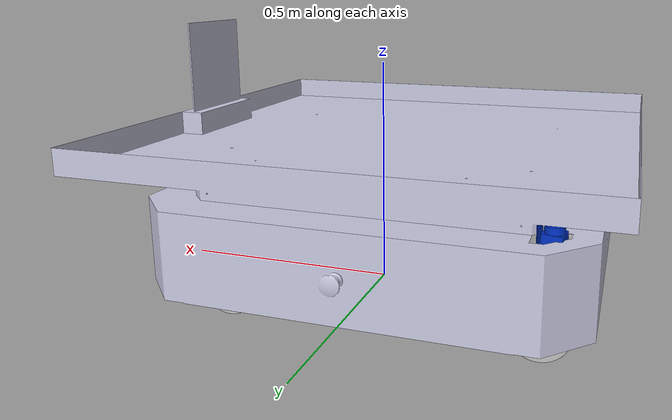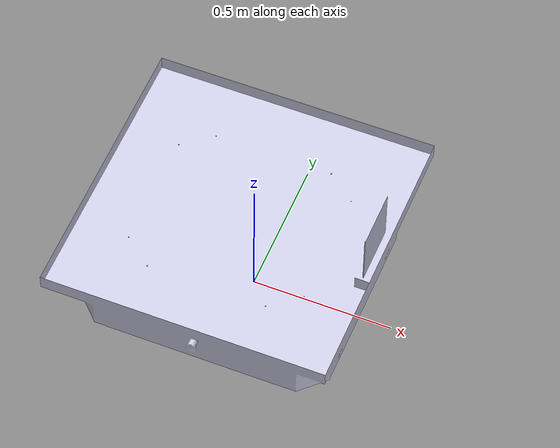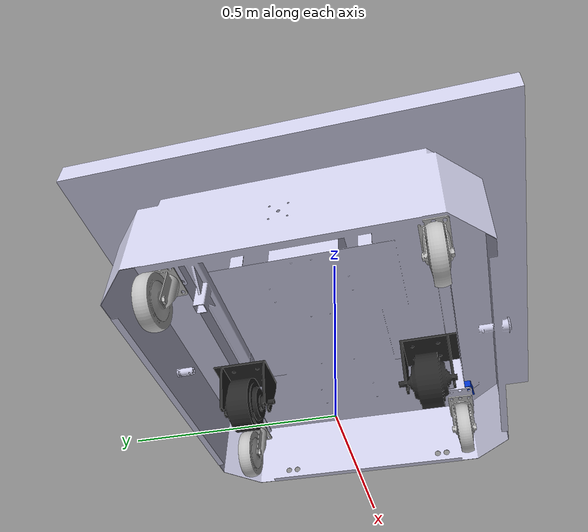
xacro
<?xml version="1.0"?>
<robot xmlns:xacro="http://www.ros.org/wiki/xacro" name="amr">

  <!-- AMR Heavy-duty - dimensi & origin mesh DIKOMPENSASI sesuai hasil analisis bounds CAD.
       base_link mesh: ukuran 1.0x1.0x0.519, bottom di Z=-0.118 (sebelum kompensasi). -->

  <!-- ============ PROPERTIES ============ -->
  <xacro:property name="body_length" value="1.0"/>
  <xacro:property name="body_width"  value="1.0"/>
  <xacro:property name="body_height" value="0.27"/>
  <xacro:property name="body_mass"   value="80.0"/>

  <!-- Shift visual base mesh ke atas: bottom mesh asli ada di Z=-0.118 setelah rotasi -->
  <xacro:property name="base_mesh_z_shift" value="0.118"/>

  <xacro:property name="wheel_radius"     value="0.065"/>
  <xacro:property name="wheel_width"      value="0.055"/>
  <xacro:property name="wheel_mass"       value="3.0"/>
  <xacro:property name="wheel_separation" value="0.45"/>

  <xacro:property name="caster_radius" value="0.065"/>
  <xacro:property name="caster_mass"   value="0.45"/>
  <xacro:property name="caster_x_front" value=" 0.23"/>
  <xacro:property name="caster_x_rear"  value="-0.4"/>
  <xacro:property name="caster_y_outer" value=" 0.29"/>

  <!-- Lidar di pojok diagonal body, sedikit di atas top plate -->
  <xacro:property name="lidar_x_off" value="0.45"/>
  <xacro:property name="lidar_y_off" value="0.45"/>
  <xacro:property name="lidar_z_off" value="0.2"/>

  <xacro:property name="lidar_x"    value="0.035"/>
  <xacro:property name="lidar_y"    value="0.035"/>
  <xacro:property name="lidar_z"    value="0.01"/>
  <xacro:property name="lidar_mass" value="0.10"/>

  <xacro:property name="mesh_pkg" value="package://amr_description/meshes"/>
  <xacro:property name="mesh_rpy_base" value="1.5708 0 1.5708"/>

  <!-- ============ INERTIA MACROS ============ -->
  <xacro:macro name="box_inertia" params="m x y z">
    <inertial>
      <mass value="${m}"/>
      <inertia ixx="${m/12*(y*y+z*z)}" ixy="0.0" ixz="0.0"
               iyy="${m/12*(x*x+z*z)}" iyz="0.0"
               izz="${m/12*(x*x+y*y)}"/>
    </inertial>
  </xacro:macro>

  <xacro:macro name="cylinder_inertia_y" params="m r h">
    <inertial>
      <mass value="${m}"/>
      <inertia ixx="${m/12*(3*r*r+h*h)}" ixy="0.0" ixz="0.0"
               iyy="${m/2*r*r}" iyz="0.0"
               izz="${m/12*(3*r*r+h*h)}"/>
    </inertial>
  </xacro:macro>

  <xacro:macro name="sphere_inertia" params="m r">
    <inertial>
      <mass value="${m}"/>
      <inertia ixx="${2/5*m*r*r}" ixy="0.0" ixz="0.0"
               iyy="${2/5*m*r*r}" iyz="0.0"
               izz="${2/5*m*r*r}"/>
    </inertial>
  </xacro:macro>

  <!-- ============ BASE ============ -->
  <link name="base_footprint"/>

  <joint name="base_footprint_joint" type="fixed">
    <parent link="base_footprint"/>
    <child  link="base_link"/>
    <origin xyz="0 0 ${wheel_radius}" rpy="0 0 0"/>
  </joint>

  <link name="base_link"/>

  <joint name="base_link_joint" type="fixed">
    <parent link="base_link"/>
    <child  link="chassis_link"/>
    <origin xyz="-0.05 0 0" rpy="0 0 0"/>
  </joint>

  <link name="chassis_link">
    <!-- Mesh di-shift ke atas agar bottom-nya pas di Z=0 base_link -->
    <visual>
      <origin xyz="0 0 ${base_mesh_z_shift}" rpy="${mesh_rpy_base}"/>
      <geometry><mesh filename="${mesh_pkg}/base_link.stl"/></geometry>
      <material name="body_grey"><color rgba="0.8 0.8 0.9 1.0"/></material>
    </visual>
    <collision>
      <origin xyz="0 0 ${body_height/2}" rpy="0 0 0"/>
      <geometry><box size="${body_length} ${body_width} ${body_height}"/></geometry>
    </collision>
    <xacro:box_inertia m="${body_mass}" x="${body_length}" y="${body_width}" z="${body_height}"/>
  </link>

  <!-- ============ DRIVE WHEELS ============ -->
  <!-- Mesh wheel punya offset kecil. Wheel kiri butuh shift Y=+0.002, kanan Y=-0.002,
       Z=-0.014 (untuk kompensasi hub center mesh yang offset). -->
  <xacro:macro name="drive_wheel" params="name reflect mesh_file y_shift">
    <link name="wheel_${name}_link">
      <visual>
        <origin xyz="0 ${y_shift} 0" rpy="${mesh_rpy_base}"/>
        <geometry><mesh filename="${mesh_pkg}/${mesh_file}"/></geometry>
        <material name="wheel_black"><color rgba="0.15 0.15 0.15 1.0"/></material>
      </visual>
      <collision>
        <origin xyz="0 0 0" rpy="${pi/2} 0 0"/>
        <geometry><cylinder radius="${wheel_radius}" length="${wheel_width}"/></geometry>
      </collision>
      <xacro:cylinder_inertia_y m="${wheel_mass}" r="${wheel_radius}" h="${wheel_width}"/>
    </link>
    <joint name="wheel_${name}_joint" type="continuous">
      <parent link="base_link"/>
      <child  link="wheel_${name}_link"/>
      <origin xyz="0 ${reflect * wheel_separation/2} 0" rpy="0 0 0"/>
      <axis xyz="0 1 0"/>
      <dynamics damping="0.5" friction="0.5"/>
    </joint>
  </xacro:macro>

  <xacro:drive_wheel name="left"  reflect=" 1" mesh_file="left_wheel_link.stl"  y_shift=" 0.002"/>
  <xacro:drive_wheel name="right" reflect="-1" mesh_file="right_wheel_link.stl" y_shift="-0.002"/>

  <!-- ============ CASTERS ============ -->
  <!-- Mesh caster fr/rl/rr punya origin OK (center ~Z+0.014). Shift Z=-0.014.
       Mesh caster_fl_link.stl korup (X offset -0.645) -> pakai primitive saja. -->
  <xacro:macro name="caster_wheel_mesh" params="name xp yp mesh_file">
    <link name="caster_${name}_link">
      <visual>
        <origin xyz="0 0 0" rpy="${mesh_rpy_base}"/>
        <geometry><mesh filename="${mesh_pkg}/${mesh_file}"/></geometry>
        <material name="caster_silver"><color rgba="0.75 0.75 0.75 1.0"/></material>
      </visual>
      <collision><geometry><sphere radius="${caster_radius}"/></geometry></collision>
      <xacro:sphere_inertia m="${caster_mass}" r="${caster_radius}"/>
    </link>
    <joint name="caster_${name}_joint" type="fixed">
      <parent link="base_link"/>
      <child  link="caster_${name}_link"/>
      <origin xyz="${xp} ${yp} 0" rpy="0 0 0"/>
    </joint>
    <gazebo reference="caster_${name}_link">
      <mu1>0.0</mu1><mu2>0.0</mu2><material>Gazebo/DarkGrey</material>
    </gazebo>
  </xacro:macro>

  <xacro:macro name="caster_wheel_primitive" params="name xp yp">
    <link name="caster_${name}_link">
      <visual>
        <geometry><sphere radius="${caster_radius}"/></geometry>
        <material name="caster_dark"><color rgba="0.2 0.2 0.2 1.0"/></material>
      </visual>
      <collision><geometry><sphere radius="${caster_radius}"/></geometry></collision>
      <xacro:sphere_inertia m="${caster_mass}" r="${caster_radius}"/>
    </link>
    <joint name="caster_${name}_joint" type="fixed">
      <parent link="base_link"/>
      <child  link="caster_${name}_link"/>
      <origin xyz="${xp} ${yp} ${-wheel_radius+caster_radius}" rpy="0 0 0"/>
    </joint>
    <gazebo reference="caster_${name}_link">
      <mu1>0.0</mu1><mu2>0.0</mu2><material>Gazebo/DarkGrey</material>
    </gazebo>
  </xacro:macro>

  <!-- caster_fl pakai mesh caster_fr_link.stl (mesh fl korup, mesh fr valid simetris) -->
  <xacro:caster_wheel_mesh name="front_left"  xp="${caster_x_front}" yp=" ${caster_y_outer}" mesh_file="caster_fr_link.stl"/>
  <xacro:caster_wheel_mesh name="front_right" xp="${caster_x_front}" yp="-${caster_y_outer}" mesh_file="caster_fr_link.stl"/>
  <xacro:caster_wheel_mesh name="rear_left"   xp="${caster_x_rear}"  yp=" ${caster_y_outer}" mesh_file="caster_rl_link.stl"/>
  <xacro:caster_wheel_mesh name="rear_right"  xp="${caster_x_rear}"  yp="-${caster_y_outer}" mesh_file="caster_rr_link.stl"/>

  <!-- ============ GAZEBO BASE & WHEEL ============ -->
  <gazebo reference="base_link"><material>Gazebo/Grey</material><mu1>0.0</mu1><mu2>0.0</mu2></gazebo>
  <gazebo reference="wheel_left_link">
    <material>Gazebo/Black</material>
    <mu1>1.0</mu1><mu2>1.0</mu2><kp>500000.0</kp><kd>10.0</kd><minDepth>0.001</minDepth>
  </gazebo>
  <gazebo reference="wheel_right_link">
    <material>Gazebo/Black</material>
    <mu1>1.0</mu1><mu2>1.0</mu2><kp>500000.0</kp><kd>10.0</kd><minDepth>0.001</minDepth>
  </gazebo>

  <gazebo>
    <plugin filename="gz-sim-diff-drive-system" name="gz::sim::systems::DiffDrive">
      <left_joint>wheel_left_joint</left_joint>
      <right_joint>wheel_right_joint</right_joint>
      <wheel_separation>${wheel_separation}</wheel_separation>
      <wheel_radius>${wheel_radius}</wheel_radius>
      <max_linear_acceleration>10.0</max_linear_acceleration>
      <max_angular_acceleration>10.0</max_angular_acceleration>
      <topic>cmd_vel</topic>
      <odom_topic>odom</odom_topic>
      <tf_topic>tf</tf_topic>
      <frame_id>odom</frame_id>
      <child_frame_id>base_footprint</child_frame_id>
      <odom_publisher_frequency>30</odom_publisher_frequency>
    </plugin>

    <plugin filename="gz-sim-joint-state-publisher-system" name="gz::sim::systems::JointStatePublisher">
      <topic>joint_states</topic>
      <joint_name>wheel_left_joint</joint_name>
      <joint_name>wheel_right_joint</joint_name>
    </plugin>

    <plugin filename="gz-sim-sensors-system" name="gz::sim::systems::Sensors">
    </plugin>
  </gazebo>

  <!-- ============ VIRTUAL MERGED LASER FRAME ============ -->
  <link name="laser_frame">
    <inertial>
      <mass value="0.001"/>
      <inertia ixx="1e-6" ixy="0" ixz="0" iyy="1e-6" iyz="0" izz="1e-6"/>
    </inertial>
  </link>

  <joint name="laser_frame_joint" type="fixed">
    <parent link="base_link"/>
    <child  link="laser_frame"/>
    <!-- Position the virtual merged frame at top plate center (Z = lidar_z_off) -->
    <origin xyz="0.0 0.0 ${lidar_z_off}" rpy="0 0 0"/>
  </joint>

  <!-- ============ LIDAR ============ -->
  <!-- Mesh lidar punya bottom di Z=0 setelah rotasi. Visual origin Z=-0.032 agar
       pusat mesh dimensi nempel di link origin. -->
  <xacro:macro name="lidar_sensor" params="name xp yp yaw topic_name mesh_file">

    <link name="${name}_link">
      <visual>
        <origin xyz="0 0 -0.03" rpy="1.5708 0 ${yaw+3.14159}"/>
        <geometry><mesh filename="${mesh_pkg}/${mesh_file}"/></geometry>
        <material name="lidar_blue"><color rgba="0.0 0.2 0.8 1.0"/></material>
      </visual>
      <collision>
        <geometry><cylinder radius="0.0175" length="${lidar_z}"/></geometry>
      </collision>
      <inertial>
        <mass value="${lidar_mass}"/>
        <inertia ixx="1e-6" ixy="0" ixz="0" iyy="1e-6" iyz="0" izz="1e-6"/>
      </inertial>
    </link>
    <joint name="${name}_joint" type="fixed">
      <parent link="base_link"/>
      <child  link="${name}_link"/>
      <origin xyz="${xp} ${yp} ${lidar_z_off}" rpy="0 0 ${yaw}"/>
    </joint>
    <gazebo reference="${name}_link">
      <material>Gazebo/Blue</material>
      <sensor name="${name}_sensor" type="gpu_lidar">
        <always_on>true</always_on>
        <visualize>true</visualize>
        <update_rate>10</update_rate>
        <topic>${topic_name}</topic>
        <gz_frame_id>${name}_link</gz_frame_id>
        <lidar>
          <scan>
            <horizontal>
              <samples>210</samples><resolution>1</resolution>
              <min_angle>-1.8326</min_angle><max_angle>1.8326</max_angle>
            </horizontal>
          </scan>
          <range><min>0.15</min><max>12.0</max><resolution>0.01</resolution></range>
        </lidar>
      </sensor>
    </gazebo>
  </xacro:macro>

  <xacro:lidar_sensor name="lidar_front_right"
                      xp="0.32" yp="-0.31" yaw="${-pi/4+0.2968}"
                      topic_name="front_scan" mesh_file="lidar1_link.stl"/>

  <xacro:lidar_sensor name="lidar_rear_left"
                      xp="-0.42" yp="0.31" yaw="${3*pi/4+0.2968}"
                      topic_name="rear_scan" mesh_file="lidar2_link.stl"/>

  <!-- ============ IMU ============ -->
  <xacro:macro name="imu_sensor" params="name xp yp">
    <link name="${name}_link">
      <visual>
        <geometry><box size="0.025 0.025 0.005"/></geometry>
        <material name="imu_green"><color rgba="0.0 0.8 0.0 1.0"/></material>
      </visual>
      <inertial>
        <mass value="0.02"/>
        <inertia ixx="1e-6" ixy="0" ixz="0" iyy="1e-6" iyz="0" izz="1e-6"/>
      </inertial>
    </link>
    <joint name="${name}_joint" type="fixed">
      <parent link="base_link"/>
      <child  link="${name}_link"/>
      <origin xyz="${xp} ${yp} ${body_height-0.01}" rpy="0 0 0"/>
    </joint>
    <gazebo reference="${name}_link">
      <material>Gazebo/Green</material>
      <sensor name="${name}_sensor" type="imu">
        <always_on>true</always_on>
        <update_rate>50</update_rate>
        <topic>imu/data</topic>
        <gz_frame_id>${name}_link</gz_frame_id>
        <imu/>
      </sensor>
    </gazebo>
  </xacro:macro>

  <xacro:imu_sensor name="imu" xp="0.0" yp="0.0"/>

</robot>
